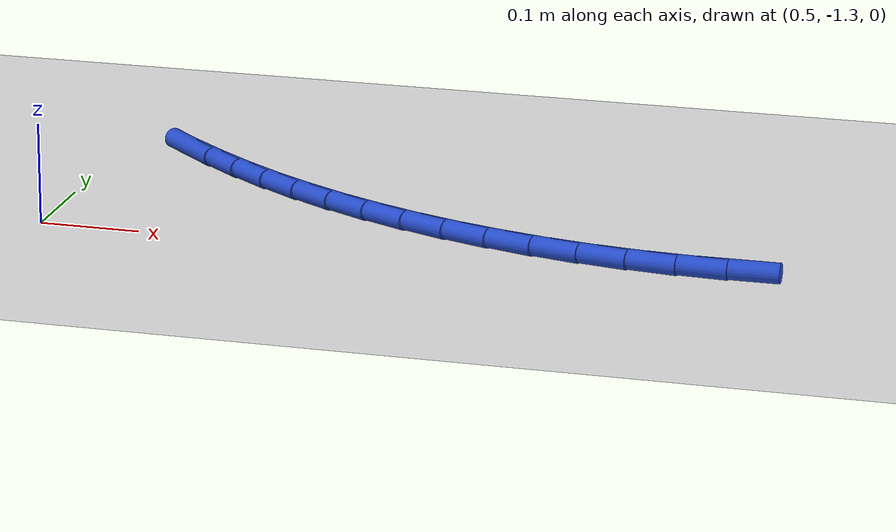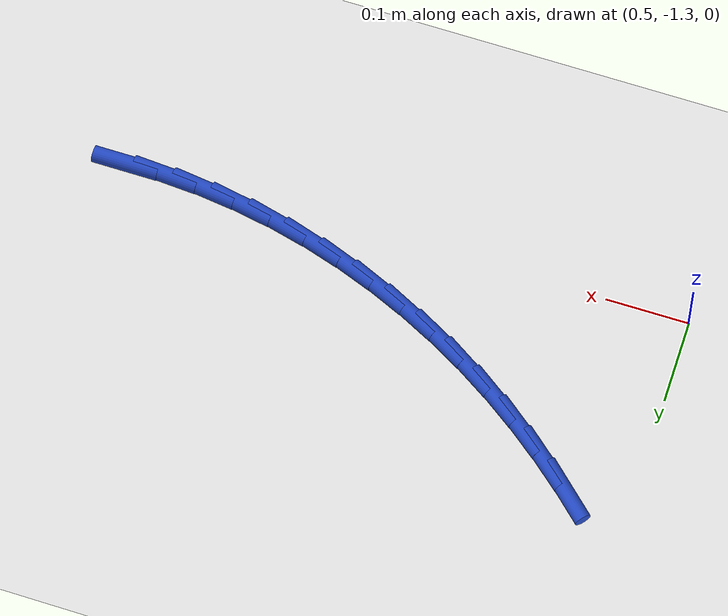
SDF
<sdf version="1.6">
 <world name="default">
  <model name="ground_plane">
   <static>1</static>
   <link name="link">
    <collision name="collision">
     <geometry><plane><normal>0 0 1</normal><size>100 100</size></plane></geometry>
     <surface><friction><ode><mu>100</mu><mu2>50</mu2></ode></friction></surface>
    </collision>
    <visual name="visual">
     <cast_shadows>0</cast_shadows>
     <geometry><plane><normal>0 0 1</normal><size>100 100</size></plane></geometry>
     <material>
      <script><uri>file://media/materials/scripts/gazebo.material</uri><name>Gazebo/WhiteGlow</name></script>
     </material>
    </visual>
   </link>
  </model>
  <model name="line">
   <link name="link_140">
    <pose>1.1854348778004695 -1.2897672636910456 0.01 0 1.57 0.0010158200739353925</pose>
    <collision name="collision">
     <geometry><cylinder><radius>0.01</radius><length>0.08</length></cylinder></geometry>
    </collision>
    <visual name="visual">
     <material>
      <script><name>Gazebo/Blue</name><uri>file://media/materials/scripts/gazebo.material</uri></script>
     </material>
     <geometry><cylinder><radius>0.01</radius><length>0.08</length></cylinder></geometry>
    </visual>
   </link>
   <link name="link_141">
    <pose>1.1365692095859352 -1.289816902434818 0.01 0 1.57 -0.06128512813972811</pose>
    <collision name="collision">
     <geometry><cylinder><radius>0.01</radius><length>0.08</length></cylinder></geometry>
    </collision>
    <visual name="visual">
     <material>
      <script><name>Gazebo/Blue</name><uri>file://media/materials/scripts/gazebo.material</uri></script>
     </material>
     <geometry><cylinder><radius>0.01</radius><length>0.08</length></cylinder></geometry>
    </visual>
   </link>
   <link name="link_142">
    <pose>1.088087536893931 -1.286841971496972 0.01 0 1.57 -0.12203552591702121</pose>
    <collision name="collision">
     <geometry><cylinder><radius>0.01</radius><length>0.08</length></cylinder></geometry>
    </collision>
    <visual name="visual">
     <material>
      <script><name>Gazebo/Blue</name><uri>file://media/materials/scripts/gazebo.material</uri></script>
     </material>
     <geometry><cylinder><radius>0.01</radius><length>0.08</length></cylinder></geometry>
    </visual>
   </link>
   <link name="link_143">
    <pose>1.0401030002770788 -1.2809569095269924 0.01 0 1.57 -0.18122732923210774</pose>
    <collision name="collision">
     <geometry><cylinder><radius>0.01</radius><length>0.08</length></cylinder></geometry>
    </collision>
    <visual name="visual">
     <material>
      <script><name>Gazebo/Blue</name><uri>file://media/materials/scripts/gazebo.material</uri></script>
     </material>
     <geometry><cylinder><radius>0.01</radius><length>0.08</length></cylinder></geometry>
    </visual>
   </link>
   <link name="link_144">
    <pose>0.992728740287999 -1.2722761551743609 0.01 0 1.57 -0.23890287518393952</pose>
    <collision name="collision">
     <geometry><cylinder><radius>0.01</radius><length>0.08</length></cylinder></geometry>
    </collision>
    <visual name="visual">
     <material>
      <script><name>Gazebo/Blue</name><uri>file://media/materials/scripts/gazebo.material</uri></script>
     </material>
     <geometry><cylinder><radius>0.01</radius><length>0.08</length></cylinder></geometry>
    </visual>
   </link>
   <link name="link_145">
    <pose>0.9460778974793125 -1.260914147088562 0.01 0 1.57 -0.29514805244508374</pose>
    <collision name="collision">
     <geometry><cylinder><radius>0.01</radius><length>0.08</length></cylinder></geometry>
    </collision>
    <visual name="visual">
     <material>
      <script><name>Gazebo/Blue</name><uri>file://media/materials/scripts/gazebo.material</uri></script>
     </material>
     <geometry><cylinder><radius>0.01</radius><length>0.08</length></cylinder></geometry>
    </visual>
   </link>
   <link name="link_146">
    <pose>0.9002636124036401 -1.24698532391908 0.01 0 1.57 -0.35008549681673273</pose>
    <collision name="collision">
     <geometry><cylinder><radius>0.01</radius><length>0.08</length></cylinder></geometry>
    </collision>
    <visual name="visual">
     <material>
      <script><name>Gazebo/Blue</name><uri>file://media/materials/scripts/gazebo.material</uri></script>
     </material>
     <geometry><cylinder><radius>0.01</radius><length>0.08</length></cylinder></geometry>
    </visual>
   </link>
   <link name="link_147">
    <pose>0.8553990256136019 -1.2306041243153967 0.01 0 1.57 -0.40386832136971007</pose>
    <collision name="collision">
     <geometry><cylinder><radius>0.01</radius><length>0.08</length></cylinder></geometry>
    </collision>
    <visual name="visual">
     <material>
      <script><name>Gazebo/Blue</name><uri>file://media/materials/scripts/gazebo.material</uri></script>
     </material>
     <geometry><cylinder><radius>0.01</radius><length>0.08</length></cylinder></geometry>
    </visual>
   </link>
   <link name="link_148">
    <pose>0.811597277661819 -1.211884986926997 0.01 0 1.57 -0.4566746886717572</pose>
    <collision name="collision">
     <geometry><cylinder><radius>0.01</radius><length>0.08</length></cylinder></geometry>
    </collision>
    <visual name="visual">
     <material>
      <script><name>Gazebo/Blue</name><uri>file://media/materials/scripts/gazebo.material</uri></script>
     </material>
     <geometry><cylinder><radius>0.01</radius><length>0.08</length></cylinder></geometry>
    </visual>
   </link>
   <link name="link_149">
    <pose>0.7689715091009129 -1.1909423504033645 0.01 0 1.57 -0.5087033639584951</pose>
    <collision name="collision">
     <geometry><cylinder><radius>0.01</radius><length>0.08</length></cylinder></geometry>
    </collision>
    <visual name="visual">
     <material>
      <script><name>Gazebo/Blue</name><uri>file://media/materials/scripts/gazebo.material</uri></script>
     </material>
     <geometry><cylinder><radius>0.01</radius><length>0.08</length></cylinder></geometry>
    </visual>
   </link>
   <link name="link_150">
    <pose>0.7276348604835042 -1.167890653393982 0.01 0 1.57 -0.5601650494497205</pose>
    <collision name="collision">
     <geometry><cylinder><radius>0.01</radius><length>0.08</length></cylinder></geometry>
    </collision>
    <visual name="visual">
     <material>
      <script><name>Gazebo/Blue</name><uri>file://media/materials/scripts/gazebo.material</uri></script>
     </material>
     <geometry><cylinder><radius>0.01</radius><length>0.08</length></cylinder></geometry>
    </visual>
   </link>
   <link name="link_151">
    <pose>0.6877000603936996 -1.1428443660967975 0.01 0 1.57 -0.6104592977360753</pose>
    <collision name="collision">
     <geometry><cylinder><radius>0.01</radius><length>0.08</length></cylinder></geometry>
    </collision>
    <visual name="visual">
     <material>
      <script><name>Gazebo/Blue</name><uri>file://media/materials/scripts/gazebo.material</uri></script>
     </material>
     <geometry><cylinder><radius>0.01</radius><length>0.08</length></cylinder></geometry>
    </visual>
   </link>
   <link name="link_152">
    <pose>0.6492186223198169 -1.1159226465491348 0.01 0 1.57 -0.6578643346232401</pose>
    <collision name="collision">
     <geometry><cylinder><radius>0.01</radius><length>0.08</length></cylinder></geometry>
    </collision>
    <visual name="visual">
     <material>
      <script><name>Gazebo/Blue</name><uri>file://media/materials/scripts/gazebo.material</uri></script>
     </material>
     <geometry><cylinder><radius>0.01</radius><length>0.08</length></cylinder></geometry>
    </visual>
   </link>
   <link name="link_153">
    <pose>0.6121165061469038 -1.0872542676572947 0.01 0 1.57 -0.7019708722066186</pose>
    <collision name="collision">
     <geometry><cylinder><radius>0.01</radius><length>0.08</length></cylinder></geometry>
    </collision>
    <visual name="visual">
     <material>
      <script><name>Gazebo/Blue</name><uri>file://media/materials/scripts/gazebo.material</uri></script>
     </material>
     <geometry><cylinder><radius>0.01</radius><length>0.08</length></cylinder></geometry>
    </visual>
   </link>
   <link name="link_154">
    <pose>0.5763042706013551 -1.056969181745122 0.01 0 1.57 -0.7426432760793007</pose>
    <collision name="collision">
     <geometry><cylinder><radius>0.01</radius><length>0.08</length></cylinder></geometry>
    </collision>
    <visual name="visual">
     <material>
      <script><name>Gazebo/Blue</name><uri>file://media/materials/scripts/gazebo.material</uri></script>
     </material>
     <geometry><cylinder><radius>0.01</radius><length>0.08</length></cylinder></geometry>
    </visual>
   </link>
  </model>
 </world>
</sdf>
